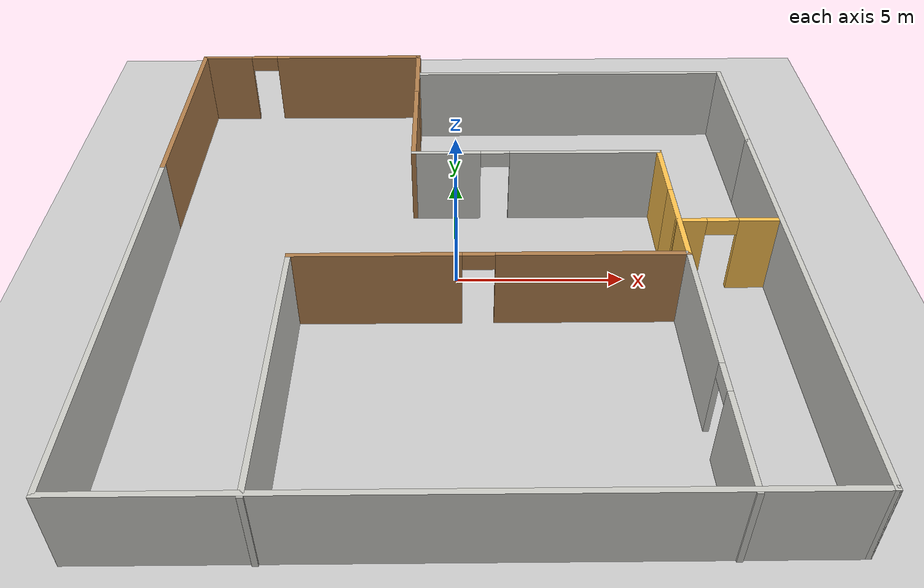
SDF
<sdf version="1.7">
 <world name="default">
  <light name="sun" type="directional">
   <pose>0 0 10 0 -0 0</pose>
   <diffuse>0.8 0.8 0.8 1</diffuse>
   <specular>0.2 0.2 0.2 1</specular>
   <attenuation>
    <range>1000</range>
    <constant>0.9</constant>
    <linear>0.01</linear>
    <quadratic>0.001</quadratic>
   </attenuation>
   <direction>-0.5 0.1 -0.9</direction>
   <spot><inner_angle>0</inner_angle><outer_angle>0</outer_angle><falloff>0</falloff></spot>
  </light>
  <model name="ground_plane">
   <static>1</static>
   <link name="link">
    <collision name="collision">
     <geometry><plane><normal>0 0 1</normal><size>100 100</size></plane></geometry>
     <surface><friction><ode><mu>100</mu><mu2>50</mu2></ode></friction></surface>
    </collision>
    <visual name="visual">
     <cast_shadows>0</cast_shadows>
     <geometry><plane><normal>0 0 1</normal><size>100 100</size></plane></geometry>
     <material>
      <script><uri>file://media/materials/scripts/gazebo.material</uri><name>Gazebo/Grey</name></script>
     </material>
    </visual>
   </link>
  </model>
  <gravity>0 0 -9.8</gravity>
  <magnetic_field>6e-06 2.3e-05 -4.2e-05</magnetic_field>
  <atmosphere type="adiabatic"/>
  <physics type="ode">
   <max_step_size>0.001</max_step_size>
   <real_time_factor>1</real_time_factor>
   <real_time_update_rate>1000</real_time_update_rate>
  </physics>
  <scene><ambient>0.4 0.4 0.4 1</ambient><background>0.7 0.7 0.7 1</background><shadows>1</shadows></scene>
  <audio><device>default</device></audio>
  <spherical_coordinates>
   <surface_model>EARTH_WGS84</surface_model>
   <latitude_deg>0</latitude_deg>
   <longitude_deg>0</longitude_deg>
   <elevation>0</elevation>
   <heading_deg>0</heading_deg>
  </spherical_coordinates>
  <model name="therobot_world">
   <pose>0.157709 -0.122347 0 0 -0 0</pose>
   <link name="Wall_10">
    <collision name="Wall_10_Collision">
     <geometry><box><size>3 0.15 2.5</size></box></geometry>
     <pose>0 0 1.25 0 -0 0</pose>
    </collision>
    <visual name="Wall_10_Visual">
     <pose>0 0 1.25 0 -0 0</pose>
     <geometry><box><size>3 0.15 2.5</size></box></geometry>
     <material>
      <script><uri>file://media/materials/scripts/gazebo.material</uri><name>Gazebo/Grey</name></script>
      <ambient>1 0.764706 0.305882 1</ambient>
     </material>
     <meta><layer>0</layer></meta>
    </visual>
    <pose>6.145 -0.225 0 0 -0 1.5708</pose>
   </link>
   <link name="Wall_11">
    <collision name="Wall_11_Collision">
     <geometry><box><size>2.25 0.15 2.5</size></box></geometry>
     <pose>0 0 1.25 0 -0 0</pose>
    </collision>
    <visual name="Wall_11_Visual">
     <pose>0 0 1.25 0 -0 0</pose>
     <geometry><box><size>2.25 0.15 2.5</size></box></geometry>
     <material>
      <script><uri>file://media/materials/scripts/gazebo.material</uri><name>Gazebo/Grey</name></script>
      <ambient>1 0.764706 0.305882 1</ambient>
     </material>
     <meta><layer>0</layer></meta>
    </visual>
    <pose>6.145 2.25 0 0 -0 1.5708</pose>
   </link>
   <link name="Wall_12">
    <pose>2.345 3.3 0 0 -0 3.14159</pose>
    <visual name="Wall_12_Visual_0">
     <pose>-1.52457 0 1.25 0 -0 0</pose>
     <geometry><box><size>4.70086 0.15 2.5</size></box></geometry>
     <material>
      <script><uri>file://media/materials/scripts/gazebo.material</uri><name>Gazebo/CeilingTiled</name></script>
      <ambient>1 0.764706 0.305882 1</ambient>
     </material>
     <meta><layer>0</layer></meta>
    </visual>
    <collision name="Wall_12_Collision_0">
     <geometry><box><size>4.70086 0.15 2.5</size></box></geometry>
     <pose>-1.52457 0 1.25 0 -0 0</pose>
    </collision>
    <visual name="Wall_12_Visual_1">
     <pose>2.80043 0 1.25 0 -0 0</pose>
     <geometry><box><size>2.14914 0.15 2.5</size></box></geometry>
     <material>
      <script><uri>file://media/materials/scripts/gazebo.material</uri><name>Gazebo/CeilingTiled</name></script>
      <ambient>1 0.764706 0.305882 1</ambient>
     </material>
     <meta><layer>0</layer></meta>
    </visual>
    <collision name="Wall_12_Collision_1">
     <geometry><box><size>2.14914 0.15 2.5</size></box></geometry>
     <pose>2.80043 0 1.25 0 -0 0</pose>
    </collision>
    <visual name="Wall_12_Visual_2">
     <pose>1.27586 0 2.25 0 -0 0</pose>
     <geometry><box><size>0.9 0.15 0.5</size></box></geometry>
     <material>
      <script><uri>file://media/materials/scripts/gazebo.material</uri><name>Gazebo/CeilingTiled</name></script>
      <ambient>1 0.764706 0.305882 1</ambient>
     </material>
     <meta><layer>0</layer></meta>
    </visual>
    <collision name="Wall_12_Collision_2">
     <geometry><box><size>0.9 0.15 0.5</size></box></geometry>
     <pose>1.27586 0 2.25 0 -0 0</pose>
    </collision>
   </link>
   <link name="Wall_13">
    <collision name="Wall_13_Collision">
     <geometry><box><size>4 0.15 2.5</size></box></geometry>
     <pose>0 0 1.25 0 -0 0</pose>
    </collision>
    <visual name="Wall_13_Visual">
     <pose>0 0 1.25 0 -0 0</pose>
     <geometry><box><size>4 0.15 2.5</size></box></geometry>
     <material>
      <script><uri>file://media/materials/scripts/gazebo.material</uri><name>Gazebo/Wood</name></script>
      <ambient>1 0.470588 0 1</ambient>
     </material>
     <meta><layer>0</layer></meta>
    </visual>
    <pose>-1.455 5.225 0 0 -0 1.5708</pose>
   </link>
   <link name="Wall_14">
    <collision name="Wall_14_Collision">
     <geometry><box><size>2.5 0.15 2.5</size></box></geometry>
     <pose>0 0 1.25 0 -0 0</pose>
    </collision>
    <visual name="Wall_14_Visual">
     <pose>0 0 1.25 0 -0 0</pose>
     <geometry><box><size>2.5 0.15 2.5</size></box></geometry>
     <material>
      <script><uri>file://media/materials/scripts/gazebo.material</uri><name>Gazebo/Wood</name></script>
      <ambient>1 1 1 1</ambient>
     </material>
     <meta><layer>0</layer></meta>
    </visual>
    <pose>-1.455 8.325 0 0 -0 1.5708</pose>
   </link>
   <link name="Wall_15">
    <pose>-5.255 9.5 0 0 -0 3.14159</pose>
    <visual name="Wall_15_Visual_0">
     <pose>-1.31188 0 1.25 0 -0 0</pose>
     <geometry><box><size>5.12624 0.15 2.5</size></box></geometry>
     <material>
      <script><uri>file://media/materials/scripts/gazebo.material</uri><name>Gazebo/Wood</name></script>
      <ambient>1 1 1 1</ambient>
     </material>
     <meta><layer>0</layer></meta>
    </visual>
    <collision name="Wall_15_Collision_0">
     <geometry><box><size>5.12624 0.15 2.5</size></box></geometry>
     <pose>-1.31188 0 1.25 0 -0 0</pose>
    </collision>
    <visual name="Wall_15_Visual_1">
     <pose>3.01312 0 1.25 0 -0 0</pose>
     <geometry><box><size>1.72376 0.15 2.5</size></box></geometry>
     <material>
      <script><uri>file://media/materials/scripts/gazebo.material</uri><name>Gazebo/Wood</name></script>
      <ambient>1 1 1 1</ambient>
     </material>
     <meta><layer>0</layer></meta>
    </visual>
    <collision name="Wall_15_Collision_1">
     <geometry><box><size>1.72376 0.15 2.5</size></box></geometry>
     <pose>3.01312 0 1.25 0 -0 0</pose>
    </collision>
    <visual name="Wall_15_Visual_2">
     <pose>1.70124 0 2.25 0 -0 0</pose>
     <geometry><box><size>0.9 0.15 0.5</size></box></geometry>
     <material>
      <script><uri>file://media/materials/scripts/gazebo.material</uri><name>Gazebo/Wood</name></script>
      <ambient>1 1 1 1</ambient>
     </material>
     <meta><layer>0</layer></meta>
    </visual>
    <collision name="Wall_15_Collision_2">
     <geometry><box><size>0.9 0.15 0.5</size></box></geometry>
     <pose>1.70124 0 2.25 0 -0 0</pose>
    </collision>
   </link>
   <link name="Wall_16">
    <collision name="Wall_16_Collision">
     <geometry><box><size>7 0.15 2.5</size></box></geometry>
     <pose>0 0 1.25 0 -0 0</pose>
    </collision>
    <visual name="Wall_16_Visual">
     <pose>0 0 1.25 0 -0 0</pose>
     <geometry><box><size>7 0.15 2.5</size></box></geometry>
     <material>
      <script><uri>file://media/materials/scripts/gazebo.material</uri><name>Gazebo/Wood</name></script>
      <ambient>1 1 1 1</ambient>
     </material>
     <meta><layer>0</layer></meta>
    </visual>
    <pose>-9.055 6.075 0 0 -0 -1.5708</pose>
   </link>
   <link name="Wall_17">
    <collision name="Wall_17_Collision">
     <geometry><box><size>12.25 0.15 2.5</size></box></geometry>
     <pose>0 0 1.25 0 -0 0</pose>
    </collision>
    <visual name="Wall_17_Visual">
     <pose>0 0 1.25 0 -0 0</pose>
     <geometry><box><size>12.25 0.15 2.5</size></box></geometry>
     <material>
      <script><uri>file://media/materials/scripts/gazebo.material</uri><name>Gazebo/CeilingTiled</name></script>
      <ambient>1 0.470588 0 1</ambient>
     </material>
     <meta><layer>0</layer></meta>
    </visual>
    <pose>-9.055 -3.4 0 0 -0 -1.5708</pose>
   </link>
   <link name="Wall_18">
    <collision name="Wall_18_Collision">
     <geometry><box><size>18.25 0.15 2.5</size></box></geometry>
     <pose>0 0 1.25 0 -0 0</pose>
    </collision>
    <visual name="Wall_18_Visual">
     <pose>0 0 1.25 0 -0 0</pose>
     <geometry><box><size>18.25 0.15 2.5</size></box></geometry>
     <material>
      <script><uri>file://media/materials/scripts/gazebo.material</uri><name>Gazebo/CeilingTiled</name></script>
      <ambient>1 0.764706 0.305882 1</ambient>
     </material>
     <meta><layer>0</layer></meta>
    </visual>
    <pose>-0.005 -9.45 0 0 -0 0</pose>
   </link>
   <link name="Wall_19">
    <collision name="Wall_19_Collision">
     <geometry><box><size>0.16 0.15 2.5</size></box></geometry>
     <pose>0 0 1.25 0 -0 0</pose>
    </collision>
    <visual name="Wall_19_Visual">
     <pose>0 0 1.25 0 -0 0</pose>
     <geometry><box><size>0.16 0.15 2.5</size></box></geometry>
     <material>
      <script><uri>file://media/materials/scripts/gazebo.material</uri><name>Gazebo/Grey</name></script>
      <ambient>1 1 1 1</ambient>
     </material>
     <meta><layer>0</layer></meta>
    </visual>
    <pose>9.05 -9.45 0 0 -0 0</pose>
   </link>
   <link name="Wall_20">
    <collision name="Wall_20_Collision">
     <geometry><box><size>13.5 0.15 2.5</size></box></geometry>
     <pose>0 0 1.25 0 -0 0</pose>
    </collision>
    <visual name="Wall_20_Visual">
     <pose>0 0 1.25 0 -0 0</pose>
     <geometry><box><size>13.5 0.15 2.5</size></box></geometry>
     <material>
      <script><uri>file://media/materials/scripts/gazebo.material</uri><name>Gazebo/CeilingTiled</name></script>
      <ambient>1 0.764706 0.305882 1</ambient>
     </material>
     <meta><layer>0</layer></meta>
    </visual>
    <pose>9.055 -2.775 0 0 -0 1.5708</pose>
   </link>
   <link name="Wall_22">
    <collision name="Wall_22_Collision">
     <geometry><box><size>4.5 0.15 2.5</size></box></geometry>
     <pose>0 0 1.25 0 -0 0</pose>
    </collision>
    <visual name="Wall_22_Visual">
     <pose>0 0 1.25 0 -0 0</pose>
     <geometry><box><size>4.5 0.15 2.5</size></box></geometry>
     <material>
      <script><uri>file://media/materials/scripts/gazebo.material</uri><name>Gazebo/CeilingTiled</name></script>
      <ambient>1 0.764706 0.305882 1</ambient>
     </material>
     <meta><layer>0</layer></meta>
    </visual>
    <pose>9.055 6.075 0 0 -0 1.5708</pose>
   </link>
   <link name="Wall_23">
    <collision name="Wall_23_Collision">
     <geometry><box><size>10.5 0.15 2.5</size></box></geometry>
     <pose>0 0 1.25 0 -0 0</pose>
    </collision>
    <visual name="Wall_23_Visual">
     <pose>0 0 1.25 0 -0 0</pose>
     <geometry><box><size>10.5 0.15 2.5</size></box></geometry>
     <material>
      <script><uri>file://media/materials/scripts/gazebo.material</uri><name>Gazebo/CeilingTiled</name></script>
      <ambient>1 0.764706 0.305882 1</ambient>
     </material>
     <meta><layer>0</layer></meta>
    </visual>
    <pose>3.88 8.25 0 0 -0 3.14159</pose>
   </link>
   <link name="Wall_25">
    <collision name="Wall_25_Collision">
     <geometry><box><size>8 0.15 2.5</size></box></geometry>
     <pose>0 0 1.25 0 -0 0</pose>
    </collision>
    <visual name="Wall_25_Visual">
     <pose>0 0 1.25 0 -0 0</pose>
     <geometry><box><size>8 0.15 2.5</size></box></geometry>
     <material>
      <script><uri>file://media/materials/scripts/gazebo.material</uri><name>Gazebo/CeilingTiled</name></script>
      <ambient>1 0.470588 0 1</ambient>
     </material>
     <meta><layer>0</layer></meta>
    </visual>
    <pose>-4.705 -5.575 0 0 -0 -1.5708</pose>
   </link>
   <link name="Wall_29">
    <pose>6.145 -5.575 0 0 -0 -1.5708</pose>
    <visual name="Wall_29_Visual_0">
     <pose>-1.89375 0 1.25 0 -0 0</pose>
     <geometry><box><size>4.21249 0.15 2.5</size></box></geometry>
     <material>
      <script><uri>file://media/materials/scripts/gazebo.material</uri><name>Gazebo/CeilingTiled</name></script>
      <ambient>1 0.764706 0.305882 1</ambient>
     </material>
     <meta><layer>0</layer></meta>
    </visual>
    <collision name="Wall_29_Collision_0">
     <geometry><box><size>4.21249 0.15 2.5</size></box></geometry>
     <pose>-1.89375 0 1.25 0 -0 0</pose>
    </collision>
    <visual name="Wall_29_Visual_1">
     <pose>2.55625 0 1.25 0 -0 0</pose>
     <geometry><box><size>2.88751 0.15 2.5</size></box></geometry>
     <material>
      <script><uri>file://media/materials/scripts/gazebo.material</uri><name>Gazebo/CeilingTiled</name></script>
      <ambient>1 0.764706 0.305882 1</ambient>
     </material>
     <meta><layer>0</layer></meta>
    </visual>
    <collision name="Wall_29_Collision_1">
     <geometry><box><size>2.88751 0.15 2.5</size></box></geometry>
     <pose>2.55625 0 1.25 0 -0 0</pose>
    </collision>
    <visual name="Wall_29_Visual_2">
     <pose>0.662493 0 2.25 0 -0 0</pose>
     <geometry><box><size>0.9 0.15 0.5</size></box></geometry>
     <material>
      <script><uri>file://media/materials/scripts/gazebo.material</uri><name>Gazebo/CeilingTiled</name></script>
      <ambient>1 0.764706 0.305882 1</ambient>
     </material>
     <meta><layer>0</layer></meta>
    </visual>
    <collision name="Wall_29_Collision_2">
     <geometry><box><size>0.9 0.15 0.5</size></box></geometry>
     <pose>0.662493 0 2.25 0 -0 0</pose>
    </collision>
   </link>
   <link name="Wall_31">
    <pose>7.55099 -0.189385 0 0 -0 0</pose>
    <visual name="Wall_31_Visual_0">
     <pose>-1.05943 0 1.25 0 -0 0</pose>
     <geometry><box><size>0.881145 0.15 2.5</size></box></geometry>
     <material>
      <script><uri>file://media/materials/scripts/gazebo.material</uri><name>Gazebo/Grey</name></script>
      <ambient>1 0.764706 0.305882 1</ambient>
     </material>
     <meta><layer>0</layer></meta>
    </visual>
    <collision name="Wall_31_Collision_0">
     <geometry><box><size>0.881145 0.15 2.5</size></box></geometry>
     <pose>-1.05943 0 1.25 0 -0 0</pose>
    </collision>
    <visual name="Wall_31_Visual_1">
     <pose>0.890573 0 1.25 0 -0 0</pose>
     <geometry><box><size>1.21886 0.15 2.5</size></box></geometry>
     <material>
      <script><uri>file://media/materials/scripts/gazebo.material</uri><name>Gazebo/Grey</name></script>
      <ambient>1 0.764706 0.305882 1</ambient>
     </material>
     <meta><layer>0</layer></meta>
    </visual>
    <collision name="Wall_31_Collision_1">
     <geometry><box><size>1.21886 0.15 2.5</size></box></geometry>
     <pose>0.890573 0 1.25 0 -0 0</pose>
    </collision>
    <visual name="Wall_31_Visual_2">
     <pose>-0.168855 0 2.25 0 -0 0</pose>
     <geometry><box><size>0.9 0.15 0.5</size></box></geometry>
     <material>
      <script><uri>file://media/materials/scripts/gazebo.material</uri><name>Gazebo/Grey</name></script>
      <ambient>1 0.764706 0.305882 1</ambient>
     </material>
     <meta><layer>0</layer></meta>
    </visual>
    <collision name="Wall_31_Collision_2">
     <geometry><box><size>0.9 0.15 0.5</size></box></geometry>
     <pose>-0.168855 0 2.25 0 -0 0</pose>
    </collision>
   </link>
   <link name="Wall_9">
    <pose>0.72 -1.65 0 0 -0 0</pose>
    <visual name="Wall_9_Visual_0">
     <pose>-3.10996 0 1.25 0 -0 0</pose>
     <geometry><box><size>4.78008 0.15 2.5</size></box></geometry>
     <material>
      <script><uri>file://media/materials/scripts/gazebo.material</uri><name>Gazebo/Wood</name></script>
      <ambient>1 0.470588 0 1</ambient>
     </material>
     <meta><layer>0</layer></meta>
    </visual>
    <collision name="Wall_9_Collision_0">
     <geometry><box><size>4.78008 0.15 2.5</size></box></geometry>
     <pose>-3.10996 0 1.25 0 -0 0</pose>
    </collision>
    <visual name="Wall_9_Visual_1">
     <pose>2.84004 0 1.25 0 -0 0</pose>
     <geometry><box><size>5.31992 0.15 2.5</size></box></geometry>
     <material>
      <script><uri>file://media/materials/scripts/gazebo.material</uri><name>Gazebo/Wood</name></script>
      <ambient>1 0.470588 0 1</ambient>
     </material>
     <meta><layer>0</layer></meta>
    </visual>
    <collision name="Wall_9_Collision_1">
     <geometry><box><size>5.31992 0.15 2.5</size></box></geometry>
     <pose>2.84004 0 1.25 0 -0 0</pose>
    </collision>
    <visual name="Wall_9_Visual_2">
     <pose>-0.269924 0 2.25 0 -0 0</pose>
     <geometry><box><size>0.9 0.15 0.5</size></box></geometry>
     <material>
      <script><uri>file://media/materials/scripts/gazebo.material</uri><name>Gazebo/Wood</name></script>
      <ambient>1 0.470588 0 1</ambient>
     </material>
     <meta><layer>0</layer></meta>
    </visual>
    <collision name="Wall_9_Collision_2">
     <geometry><box><size>0.9 0.15 0.5</size></box></geometry>
     <pose>-0.269924 0 2.25 0 -0 0</pose>
    </collision>
   </link>
   <static>1</static>
  </model>
 </world>
</sdf>
